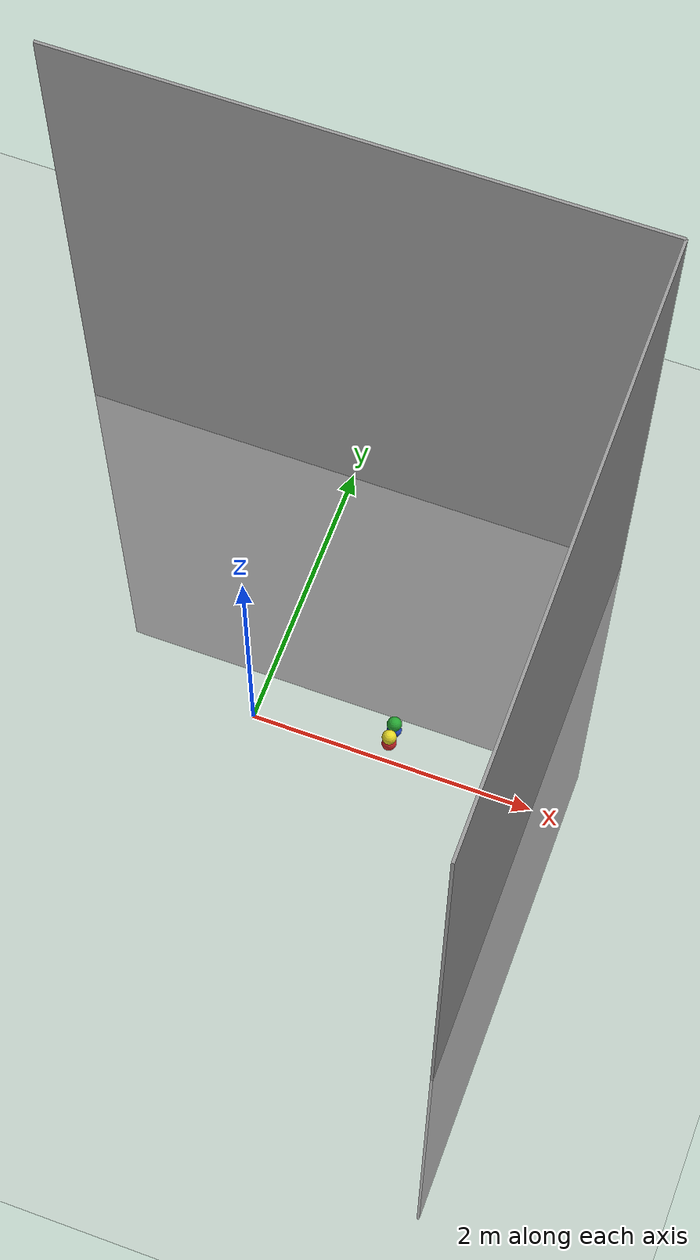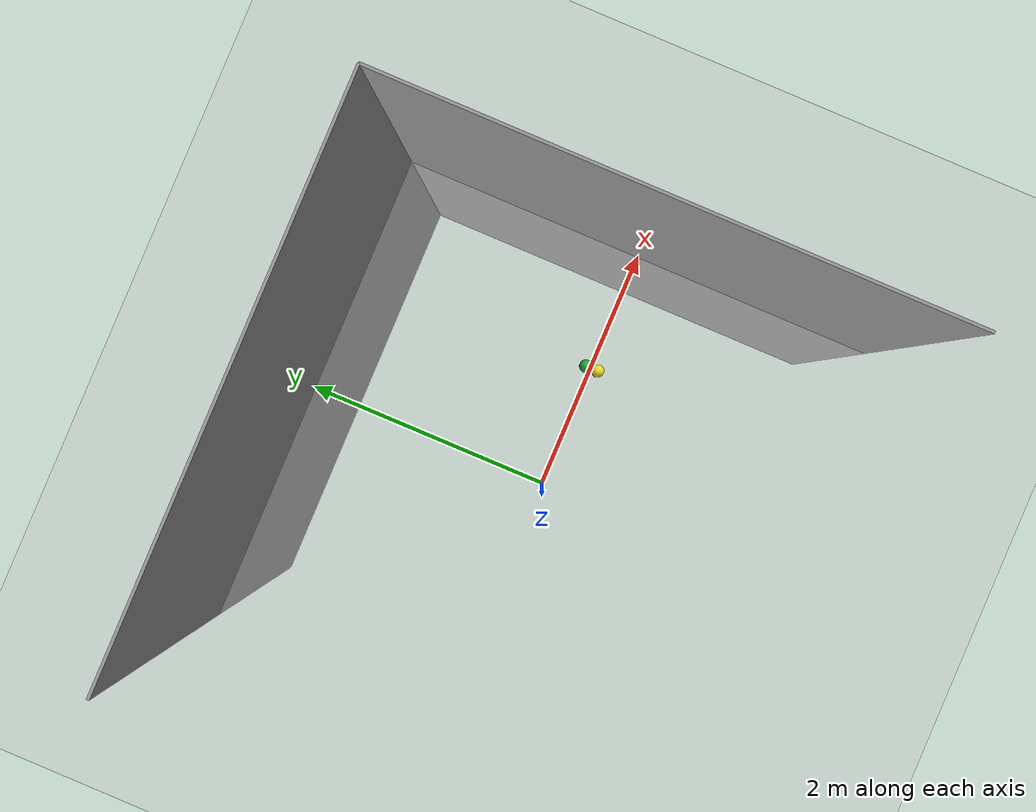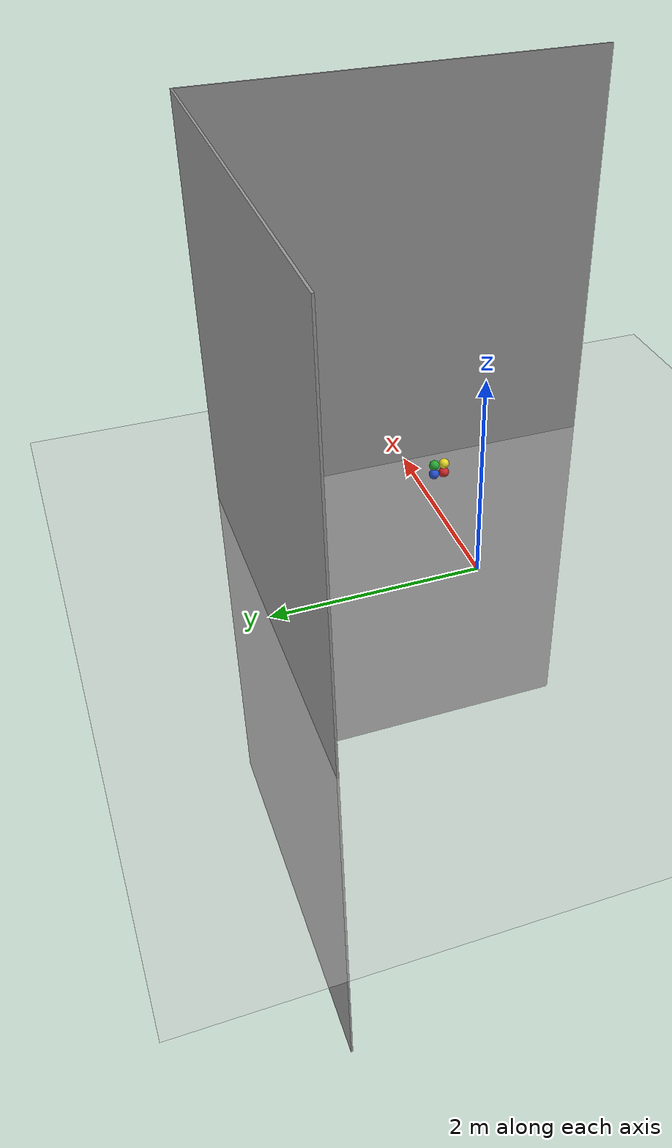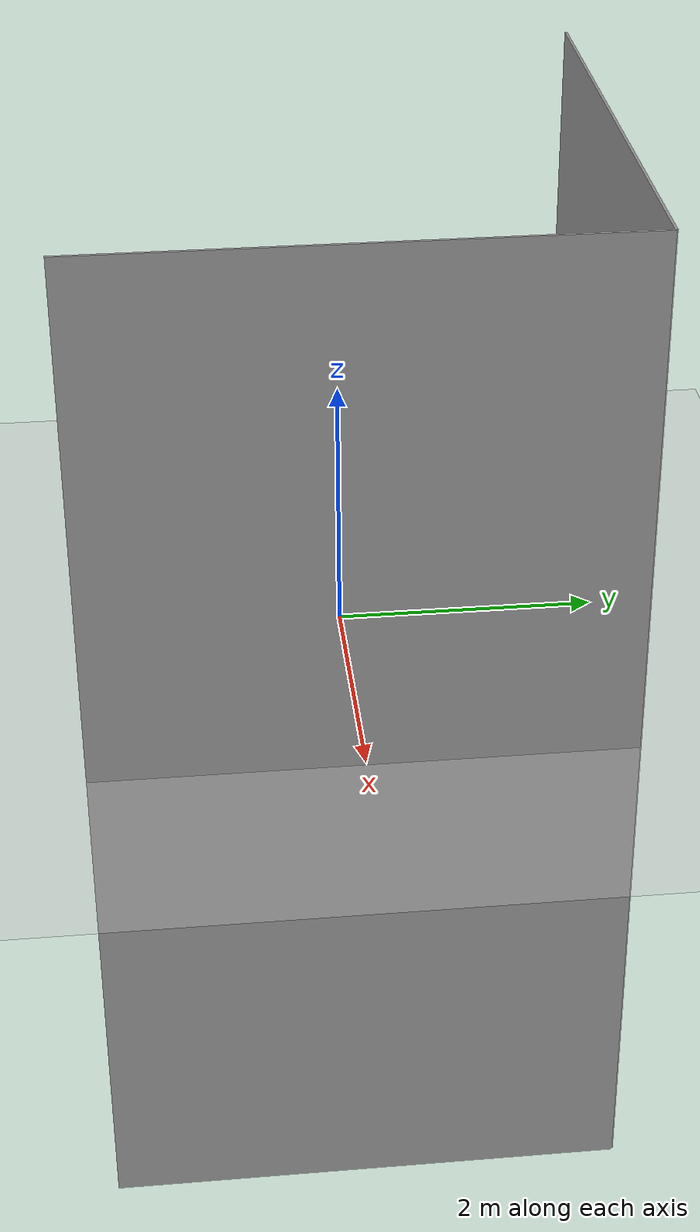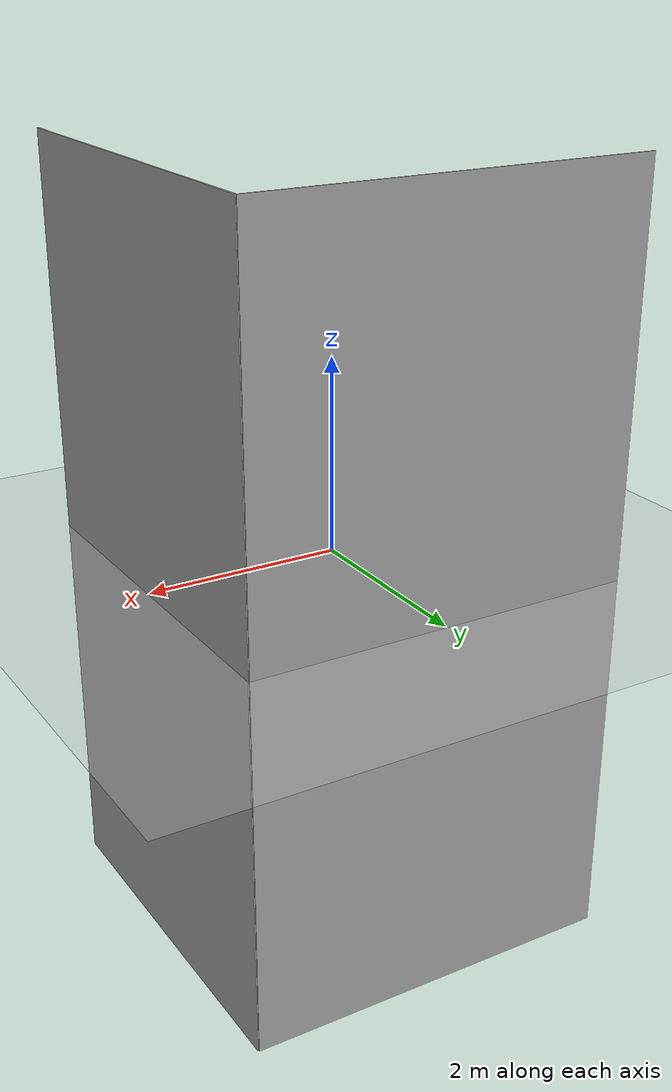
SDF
<?xml version="1.0" ?>
<sdf version="1.4">
  <world name="default">
    <!-- A global light source -->
    <include>
      <uri>model://sun</uri>
    </include>
    <!-- A ground plane -->
    <include>
      <uri>model://ground_plane</uri>
    </include>

    <physics type='ode'>
      <max_step_size>0.001</max_step_size>
      <real_time_factor>1</real_time_factor>
      <real_time_update_rate>1000</real_time_update_rate>
      <gravity>0 0 0</gravity>
    </physics>

	  <model name="box1">
      <pose>1.0 -0.05 0.45 0 0 0</pose>
      <link name="link">

        <visual name="visual">
          <geometry>
	    <sphere>
	       <radius>0.05</radius>
	    </sphere>
          </geometry>
	 <material>
	   <script>
	     <name>Gazebo/Red</name>
	     <uri>file://media/materials/scripts/gazebo.material</uri>
	   </script>
	 </material>
        </visual>
      </link>

    </model>

    <model name="box2">
      <pose>1.0 0.05 0.45 0 0 0</pose>
      <link name="link">

        <visual name="visual">
          <geometry>
	    <sphere>
	       <radius>0.05</radius>
	    </sphere>
          </geometry>
	 <material>
	   <script>
	     <name>Gazebo/Blue</name>
	     <uri>file://media/materials/scripts/gazebo.material</uri>
	   </script>
	 </material>
        </visual>
      </link>

    </model>

    <model name="box3">
      <pose>1.0 0.05 0.55 0 0 0</pose>
      <link name="link">

        <visual name="visual">
          <geometry>
	    <sphere>
	       <radius>0.05</radius>
	    </sphere>
          </geometry>
	 <material>
	   <script>
	     <name>Gazebo/Green</name>
	     <uri>file://media/materials/scripts/gazebo.material</uri>
	   </script>
	 </material>
        </visual>
      </link>

    </model>

    <model name="box4">
      <pose>1.0 -0.05 0.55 0 0 0</pose>
      <link name="link">

        <visual name="visual">
          <geometry>
	    <sphere>
	       <radius>0.05</radius>
	    </sphere>
          </geometry>
	 <material>
	   <script>
	     <name>Gazebo/Yellow</name>
	     <uri>file://media/materials/scripts/gazebo.material</uri>
	   </script>
	 </material>
        </visual>
      </link>

    </model>
        <model name="box_wall">
      <pose>2.0 0.0 0 0 0 0</pose>
      <link name="link">

        <visual name="visual">
          <geometry>
	            <box>
                <size>.02 4 8</size>
              </box>
          </geometry>
	 <material>
	   <script>
	     <name>Gazebo/Grey</name>
	     <uri>file://media/materials/scripts/gazebo.material</uri>
	   </script>
	 </material>
        </visual>
      </link>

    </model>
     <model name="box_wall2">
      <pose>0 2.0 0 0 0 0</pose>
      <link name="link">

        <visual name="visual">
          <geometry>
	            <box>
                <size>4 0.02 8</size>
              </box>
          </geometry>
	 <material>
	   <script>
	     <name>Gazebo/Grey</name>
	     <uri>file://media/materials/scripts/gazebo.material</uri>
	   </script>
	 </material>
        </visual>
      </link>

    </model>
  </world>
</sdf>
